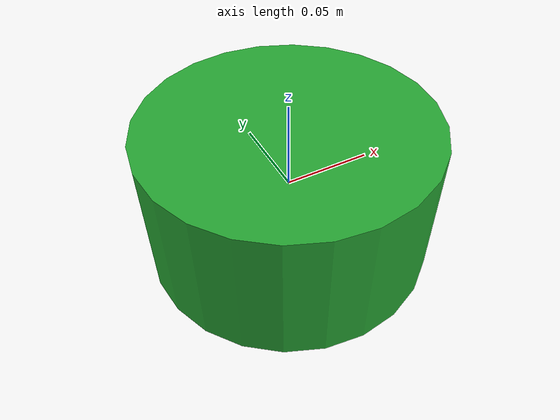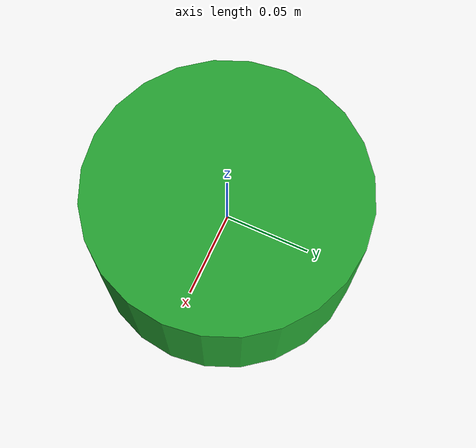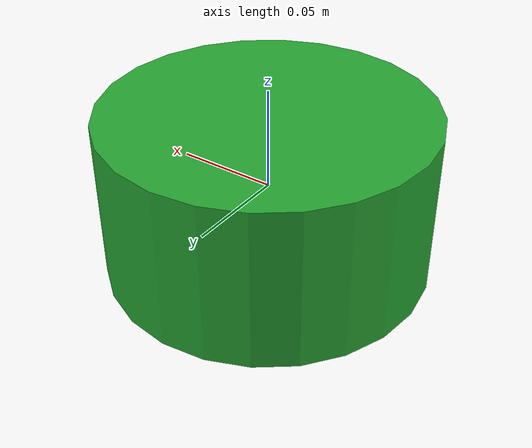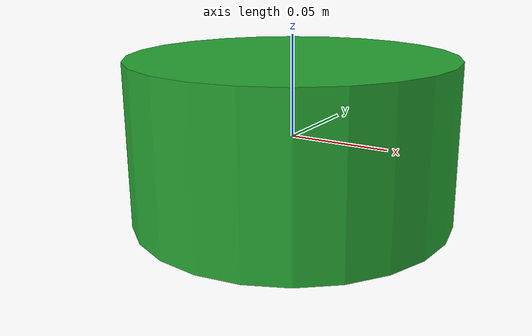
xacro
<?xml version="1.0" encoding="UTF-8"?>
<robot xmlns:xacro="http://ros.org/wiki/xacro" name="cylinder">

    <!-- arguments -->
    <xacro:arg name="cylinder_mass" default="0.2"/>
    <xacro:arg name="cylinder_inertia" default="0.0006"/>
    <xacro:arg name="cylinder_radius" default="0.08"/>
    <xacro:arg name="cylinder_length" default="0.08"/>

    <xacro:property name="link_name" value="cylinder_link"/>

    <link name="${link_name}">
        <visual>
            <origin xyz="0 0 0" rpy="0 0 0" />
            <geometry>
                <cylinder radius="$(arg cylinder_radius)" length="$(arg cylinder_length)"/>
            </geometry>
        </visual>
        <collision>
            <origin xyz="0 0 0" rpy="0 0 0" />
            <geometry>
                <cylinder radius="$(arg cylinder_radius)" length="$(arg cylinder_length)"/>
            </geometry>
        </collision>
        <inertial>
            <origin xyz="0 0 0" rpy="0 0 0"/>
            <mass value="$(arg cylinder_mass)"/>
            <inertia ixx="$(arg cylinder_inertia)" ixy="0" ixz="0" iyy="$(arg cylinder_inertia)" iyz="0" izz="$(arg cylinder_inertia)" />
        </inertial>
    </link>

    <gazebo reference="${link_name}">
        <material>Gazebo/Green</material>
    </gazebo>
</robot>
